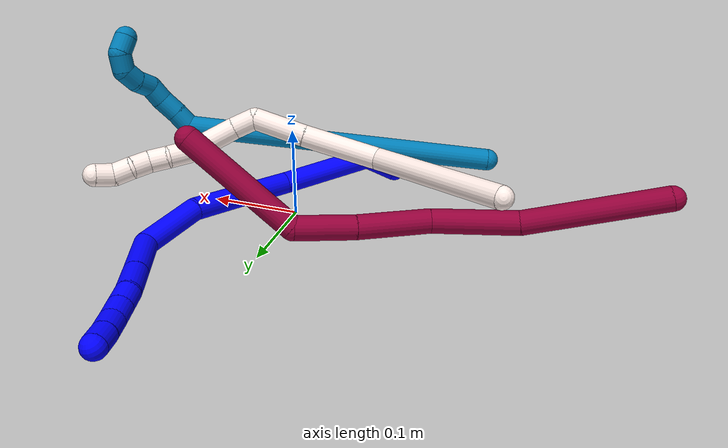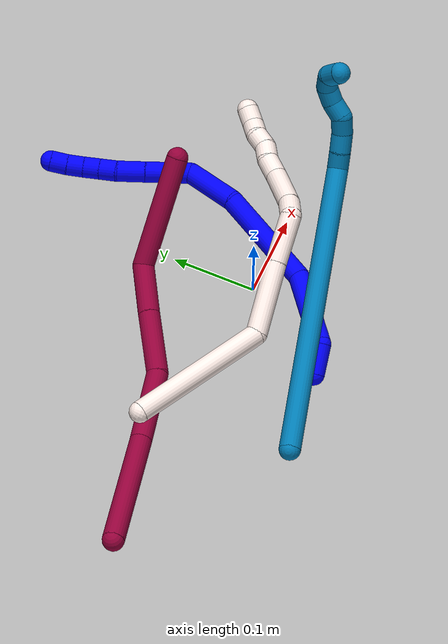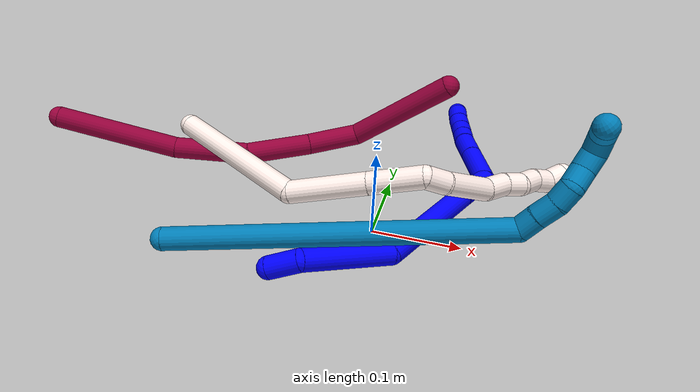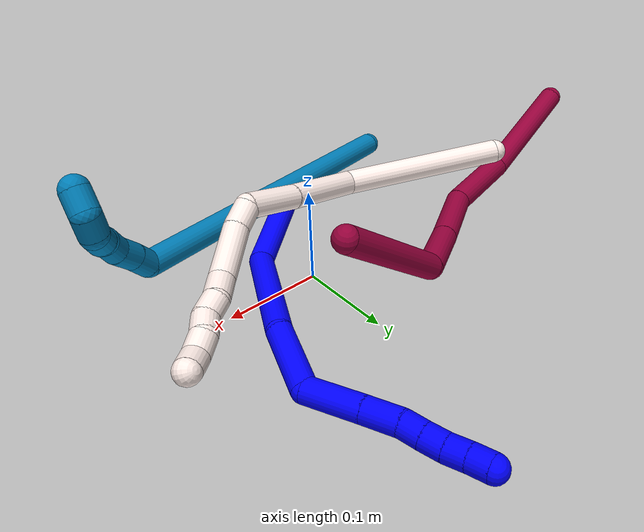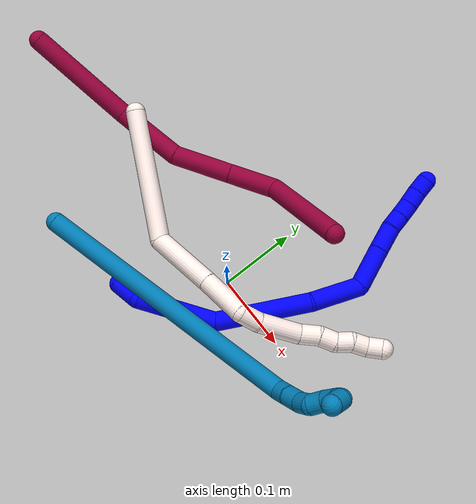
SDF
<sdf version="1.7">
 <world name="default">
  <model name="1">
   <static>0</static>
   <link name="1">
    <collision name="collision-cylinder-e_1_1_4">
     <pose>0.014547 0.001731 0.010417 -0.164652 0.94292 -0.084081</pose>
     <geometry><cylinder><radius>0.0125</radius><length>0.035951</length></cylinder></geometry>
     <surface>
      <friction><ode><mu>1.16</mu><mu2>1.16</mu2><slip1>0</slip1><slip2>0</slip2></ode></friction>
      <contact><ode><kp>1e+06</kp><kd>1</kd><max_vel>0</max_vel><min_depth>0.001</min_depth></ode></contact>
     </surface>
    </collision>
    <visual name="visual-cylinder-e_1_1_4">
     <pose>0.014547 0.001731 0.010417 -0.164652 0.94292 -0.084081</pose>
     <geometry><cylinder><radius>0.0125</radius><length>0.035951</length></cylinder></geometry>
     <material><ambient>0 0 1 1</ambient></material>
    </visual>
    <collision name="collision-cylinder-e_2_4_5">
     <pose>0.067886 0.036745 0.02772 -1.36675 0.851294 -0.707272</pose>
     <geometry><cylinder><radius>0.0125</radius><length>0.103152</length></cylinder></geometry>
     <surface>
      <friction><ode><mu>1.16</mu><mu2>1.16</mu2><slip1>0</slip1><slip2>0</slip2></ode></friction>
      <contact><ode><kp>1e+06</kp><kd>1</kd><max_vel>0</max_vel><min_depth>0.001</min_depth></ode></contact>
     </surface>
    </collision>
    <visual name="visual-cylinder-e_2_4_5">
     <pose>0.067886 0.036745 0.02772 -1.36675 0.851294 -0.707272</pose>
     <geometry><cylinder><radius>0.0125</radius><length>0.103152</length></cylinder></geometry>
     <material><ambient>0 0 1 1</ambient></material>
    </visual>
    <collision name="collision-cylinder-e_3_5_6">
     <pose>0.128807 0.122724 0.059596 -1.128 0.362658 -0.230909</pose>
     <geometry><cylinder><radius>0.0125</radius><length>0.124753</length></cylinder></geometry>
     <surface>
      <friction><ode><mu>1.16</mu><mu2>1.16</mu2><slip1>0</slip1><slip2>0</slip2></ode></friction>
      <contact><ode><kp>1e+06</kp><kd>1</kd><max_vel>0</max_vel><min_depth>0.001</min_depth></ode></contact>
     </surface>
    </collision>
    <visual name="visual-cylinder-e_3_5_6">
     <pose>0.128807 0.122724 0.059596 -1.128 0.362658 -0.230909</pose>
     <geometry><cylinder><radius>0.0125</radius><length>0.124753</length></cylinder></geometry>
     <material><ambient>0 0 1 1</ambient></material>
    </visual>
    <collision name="collision-cylinder-e_4_6_7">
     <pose>0.159487 0.207727 0.089319 -1.42529 0.256139 -0.221647</pose>
     <geometry><cylinder><radius>0.0125</radius><length>0.06751</length></cylinder></geometry>
     <surface>
      <friction><ode><mu>1.16</mu><mu2>1.16</mu2><slip1>0</slip1><slip2>0</slip2></ode></friction>
      <contact><ode><kp>1e+06</kp><kd>1</kd><max_vel>0</max_vel><min_depth>0.001</min_depth></ode></contact>
     </surface>
    </collision>
    <visual name="visual-cylinder-e_4_6_7">
     <pose>0.159487 0.207727 0.089319 -1.42529 0.256139 -0.221647</pose>
     <geometry><cylinder><radius>0.0125</radius><length>0.06751</length></cylinder></geometry>
     <material><ambient>0 0 1 1</ambient></material>
    </visual>
    <collision name="collision-cylinder-e_5_7_8">
     <pose>0.155161 0.263654 0.09901 -1.36393 -0.490201 0.400718</pose>
     <geometry><cylinder><radius>0.0125</radius><length>0.054706</length></cylinder></geometry>
     <surface>
      <friction><ode><mu>1.16</mu><mu2>1.16</mu2><slip1>0</slip1><slip2>0</slip2></ode></friction>
      <contact><ode><kp>1e+06</kp><kd>1</kd><max_vel>0</max_vel><min_depth>0.001</min_depth></ode></contact>
     </surface>
    </collision>
    <visual name="visual-cylinder-e_5_7_8">
     <pose>0.155161 0.263654 0.09901 -1.36393 -0.490201 0.400718</pose>
     <geometry><cylinder><radius>0.0125</radius><length>0.054706</length></cylinder></geometry>
     <material><ambient>0 0 1 1</ambient></material>
    </visual>
    <collision name="collision-cylinder-e_6_8_9">
     <pose>0.134546 0.30192 0.106939 -1.37059 -0.477641 0.392914</pose>
     <geometry><cylinder><radius>0.0125</radius><length>0.033662</length></cylinder></geometry>
     <surface>
      <friction><ode><mu>1.16</mu><mu2>1.16</mu2><slip1>0</slip1><slip2>0</slip2></ode></friction>
      <contact><ode><kp>1e+06</kp><kd>1</kd><max_vel>0</max_vel><min_depth>0.001</min_depth></ode></contact>
     </surface>
    </collision>
    <visual name="visual-cylinder-e_6_8_9">
     <pose>0.134546 0.30192 0.106939 -1.37059 -0.477641 0.392914</pose>
     <geometry><cylinder><radius>0.0125</radius><length>0.033662</length></cylinder></geometry>
     <material><ambient>0 0 1 1</ambient></material>
    </visual>
    <collision name="collision-cylinder-e_7_9_10">
     <pose>0.123809 0.326095 0.111256 -1.43054 -0.302317 0.263122</pose>
     <geometry><cylinder><radius>0.0125</radius><length>0.020156</length></cylinder></geometry>
     <surface>
      <friction><ode><mu>1.16</mu><mu2>1.16</mu2><slip1>0</slip1><slip2>0</slip2></ode></friction>
      <contact><ode><kp>1e+06</kp><kd>1</kd><max_vel>0</max_vel><min_depth>0.001</min_depth></ode></contact>
     </surface>
    </collision>
    <visual name="visual-cylinder-e_7_9_10">
     <pose>0.123809 0.326095 0.111256 -1.43054 -0.302317 0.263122</pose>
     <geometry><cylinder><radius>0.0125</radius><length>0.020156</length></cylinder></geometry>
     <material><ambient>0 0 1 1</ambient></material>
    </visual>
    <collision name="collision-cylinder-e_8_10_11">
     <pose>0.117577 0.344953 0.11421 -1.40011 -0.328832 0.277727</pose>
     <geometry><cylinder><radius>0.0125</radius><length>0.02001</length></cylinder></geometry>
     <surface>
      <friction><ode><mu>1.16</mu><mu2>1.16</mu2><slip1>0</slip1><slip2>0</slip2></ode></friction>
      <contact><ode><kp>1e+06</kp><kd>1</kd><max_vel>0</max_vel><min_depth>0.001</min_depth></ode></contact>
     </surface>
    </collision>
    <visual name="visual-cylinder-e_8_10_11">
     <pose>0.117577 0.344953 0.11421 -1.40011 -0.328832 0.277727</pose>
     <geometry><cylinder><radius>0.0125</radius><length>0.02001</length></cylinder></geometry>
     <material><ambient>0 0 1 1</ambient></material>
    </visual>
    <collision name="collision-cylinder-e_9_11_12">
     <pose>0.110504 0.36319 0.11837 -1.29174 -0.393171 0.29799</pose>
     <geometry><cylinder><radius>0.0125</radius><length>0.020058</length></cylinder></geometry>
     <surface>
      <friction><ode><mu>1.16</mu><mu2>1.16</mu2><slip1>0</slip1><slip2>0</slip2></ode></friction>
      <contact><ode><kp>1e+06</kp><kd>1</kd><max_vel>0</max_vel><min_depth>0.001</min_depth></ode></contact>
     </surface>
    </collision>
    <visual name="visual-cylinder-e_9_11_12">
     <pose>0.110504 0.36319 0.11837 -1.29174 -0.393171 0.29799</pose>
     <geometry><cylinder><radius>0.0125</radius><length>0.020058</length></cylinder></geometry>
     <material><ambient>0 0 1 1</ambient></material>
    </visual>
    <collision name="collision-cylinder-e_10_12_2">
     <pose>0.10354 0.381134 0.123916 -1.25089 -0.316839 0.229727</pose>
     <geometry><cylinder><radius>0.0125</radius><length>0.020042</length></cylinder></geometry>
     <surface>
      <friction><ode><mu>1.16</mu><mu2>1.16</mu2><slip1>0</slip1><slip2>0</slip2></ode></friction>
      <contact><ode><kp>1e+06</kp><kd>1</kd><max_vel>0</max_vel><min_depth>0.001</min_depth></ode></contact>
     </surface>
    </collision>
    <visual name="visual-cylinder-e_10_12_2">
     <pose>0.10354 0.381134 0.123916 -1.25089 -0.316839 0.229727</pose>
     <geometry><cylinder><radius>0.0125</radius><length>0.020042</length></cylinder></geometry>
     <material><ambient>0 0 1 1</ambient></material>
    </visual>
    <collision name="collision-sphere-2">
     <pose>0.100417 0.390173 0.12691 0 -0 0</pose>
     <geometry><sphere><radius>0.0125</radius></sphere></geometry>
     <surface>
      <friction><ode><mu>1.16</mu><mu2>1.16</mu2><slip1>0</slip1><slip2>0</slip2></ode></friction>
      <contact><ode><kp>1e+06</kp><kd>1</kd><max_vel>0</max_vel><min_depth>0.001</min_depth></ode></contact>
     </surface>
    </collision>
    <visual name="visual-sphere-2">
     <pose>0.100417 0.390173 0.12691 0 -0 0</pose>
     <geometry><sphere><radius>0.0125</radius></sphere></geometry>
     <material><ambient>0 0 1 1</ambient></material>
    </visual>
    <collision name="collision-sphere-12">
     <pose>0.106662 0.372095 0.120921 0 -0 0</pose>
     <geometry><sphere><radius>0.0125</radius></sphere></geometry>
     <surface>
      <friction><ode><mu>1.16</mu><mu2>1.16</mu2><slip1>0</slip1><slip2>0</slip2></ode></friction>
      <contact><ode><kp>1e+06</kp><kd>1</kd><max_vel>0</max_vel><min_depth>0.001</min_depth></ode></contact>
     </surface>
    </collision>
    <visual name="visual-sphere-12">
     <pose>0.106662 0.372095 0.120921 0 -0 0</pose>
     <geometry><sphere><radius>0.0125</radius></sphere></geometry>
     <material><ambient>0 0 1 1</ambient></material>
    </visual>
    <collision name="collision-sphere-11">
     <pose>0.114346 0.354285 0.115818 0 -0 0</pose>
     <geometry><sphere><radius>0.0125</radius></sphere></geometry>
     <surface>
      <friction><ode><mu>1.16</mu><mu2>1.16</mu2><slip1>0</slip1><slip2>0</slip2></ode></friction>
      <contact><ode><kp>1e+06</kp><kd>1</kd><max_vel>0</max_vel><min_depth>0.001</min_depth></ode></contact>
     </surface>
    </collision>
    <visual name="visual-sphere-11">
     <pose>0.114346 0.354285 0.115818 0 -0 0</pose>
     <geometry><sphere><radius>0.0125</radius></sphere></geometry>
     <material><ambient>0 0 1 1</ambient></material>
    </visual>
    <collision name="collision-sphere-10">
     <pose>0.120808 0.335622 0.112601 0 -0 0</pose>
     <geometry><sphere><radius>0.0125</radius></sphere></geometry>
     <surface>
      <friction><ode><mu>1.16</mu><mu2>1.16</mu2><slip1>0</slip1><slip2>0</slip2></ode></friction>
      <contact><ode><kp>1e+06</kp><kd>1</kd><max_vel>0</max_vel><min_depth>0.001</min_depth></ode></contact>
     </surface>
    </collision>
    <visual name="visual-sphere-10">
     <pose>0.120808 0.335622 0.112601 0 -0 0</pose>
     <geometry><sphere><radius>0.0125</radius></sphere></geometry>
     <material><ambient>0 0 1 1</ambient></material>
    </visual>
    <collision name="collision-sphere-9">
     <pose>0.126809 0.316569 0.109911 0 -0 0</pose>
     <geometry><sphere><radius>0.0125</radius></sphere></geometry>
     <surface>
      <friction><ode><mu>1.16</mu><mu2>1.16</mu2><slip1>0</slip1><slip2>0</slip2></ode></friction>
      <contact><ode><kp>1e+06</kp><kd>1</kd><max_vel>0</max_vel><min_depth>0.001</min_depth></ode></contact>
     </surface>
    </collision>
    <visual name="visual-sphere-9">
     <pose>0.126809 0.316569 0.109911 0 -0 0</pose>
     <geometry><sphere><radius>0.0125</radius></sphere></geometry>
     <material><ambient>0 0 1 1</ambient></material>
    </visual>
    <collision name="collision-sphere-4">
     <pose>0.029095 0.003462 0.020833 0 -0 0</pose>
     <geometry><sphere><radius>0.0125</radius></sphere></geometry>
     <surface>
      <friction><ode><mu>1.16</mu><mu2>1.16</mu2><slip1>0</slip1><slip2>0</slip2></ode></friction>
      <contact><ode><kp>1e+06</kp><kd>1</kd><max_vel>0</max_vel><min_depth>0.001</min_depth></ode></contact>
     </surface>
    </collision>
    <visual name="visual-sphere-4">
     <pose>0.029095 0.003462 0.020833 0 -0 0</pose>
     <geometry><sphere><radius>0.0125</radius></sphere></geometry>
     <material><ambient>0 0 1 1</ambient></material>
    </visual>
    <collision name="collision-sphere-1">
     <geometry><sphere><radius>0.0125</radius></sphere></geometry>
     <surface>
      <friction><ode><mu>1.16</mu><mu2>1.16</mu2><slip1>0</slip1><slip2>0</slip2></ode></friction>
      <contact><ode><kp>1e+06</kp><kd>1</kd><max_vel>0</max_vel><min_depth>0.001</min_depth></ode></contact>
     </surface>
    </collision>
    <visual name="visual-sphere-1">
     <geometry><sphere><radius>0.0125</radius></sphere></geometry>
     <material><ambient>0 0 1 1</ambient></material>
    </visual>
    <collision name="collision-sphere-8">
     <pose>0.142283 0.287271 0.103966 0 -0 0</pose>
     <geometry><sphere><radius>0.0125</radius></sphere></geometry>
     <surface>
      <friction><ode><mu>1.16</mu><mu2>1.16</mu2><slip1>0</slip1><slip2>0</slip2></ode></friction>
      <contact><ode><kp>1e+06</kp><kd>1</kd><max_vel>0</max_vel><min_depth>0.001</min_depth></ode></contact>
     </surface>
    </collision>
    <visual name="visual-sphere-8">
     <pose>0.142283 0.287271 0.103966 0 -0 0</pose>
     <geometry><sphere><radius>0.0125</radius></sphere></geometry>
     <material><ambient>0 0 1 1</ambient></material>
    </visual>
    <collision name="collision-sphere-5">
     <pose>0.106678 0.070029 0.034608 0 -0 0</pose>
     <geometry><sphere><radius>0.0125</radius></sphere></geometry>
     <surface>
      <friction><ode><mu>1.16</mu><mu2>1.16</mu2><slip1>0</slip1><slip2>0</slip2></ode></friction>
      <contact><ode><kp>1e+06</kp><kd>1</kd><max_vel>0</max_vel><min_depth>0.001</min_depth></ode></contact>
     </surface>
    </collision>
    <visual name="visual-sphere-5">
     <pose>0.106678 0.070029 0.034608 0 -0 0</pose>
     <geometry><sphere><radius>0.0125</radius></sphere></geometry>
     <material><ambient>0 0 1 1</ambient></material>
    </visual>
    <collision name="collision-sphere-6">
     <pose>0.150936 0.175419 0.084584 0 -0 0</pose>
     <geometry><sphere><radius>0.0125</radius></sphere></geometry>
     <surface>
      <friction><ode><mu>1.16</mu><mu2>1.16</mu2><slip1>0</slip1><slip2>0</slip2></ode></friction>
      <contact><ode><kp>1e+06</kp><kd>1</kd><max_vel>0</max_vel><min_depth>0.001</min_depth></ode></contact>
     </surface>
    </collision>
    <visual name="visual-sphere-6">
     <pose>0.150936 0.175419 0.084584 0 -0 0</pose>
     <geometry><sphere><radius>0.0125</radius></sphere></geometry>
     <material><ambient>0 0 1 1</ambient></material>
    </visual>
    <collision name="collision-sphere-7">
     <pose>0.168039 0.240036 0.094053 0 -0 0</pose>
     <geometry><sphere><radius>0.0125</radius></sphere></geometry>
     <surface>
      <friction><ode><mu>1.16</mu><mu2>1.16</mu2><slip1>0</slip1><slip2>0</slip2></ode></friction>
      <contact><ode><kp>1e+06</kp><kd>1</kd><max_vel>0</max_vel><min_depth>0.001</min_depth></ode></contact>
     </surface>
    </collision>
    <visual name="visual-sphere-7">
     <pose>0.168039 0.240036 0.094053 0 -0 0</pose>
     <geometry><sphere><radius>0.0125</radius></sphere></geometry>
     <material><ambient>0 0 1 1</ambient></material>
    </visual>
    <inertial>
     <pose>0.113038 0.172344 0.070201 0 -0 0</pose>
     <mass>0.5</mass>
     <inertia>
      <ixx>0.000185</ixx>
      <ixy>0</ixy>
      <ixz>0</ixz>
      <iyy>0.000118</iyy>
      <iyz>0</iyz>
      <izz>-0.000374</izz>
     </inertia>
    </inertial>
   </link>
   <pose>-0.081952 -0.111154 0.015054 -0.270345 0.175237 -0.089895</pose>
  </model>
  <model name="8">
   <static>0</static>
   <link name="8">
    <collision name="collision-cylinder-e_1_1_4">
     <pose>0.070759 0.011874 -0.006088 -2.04459 1.38441 -1.87127</pose>
     <geometry><cylinder><radius>0.0125</radius><length>0.144012</length></cylinder></geometry>
     <surface>
      <friction><ode><mu>1.16</mu><mu2>1.16</mu2><slip1>0</slip1><slip2>0</slip2></ode></friction>
      <contact><ode><kp>1e+06</kp><kd>1</kd><max_vel>0</max_vel><min_depth>0.001</min_depth></ode></contact>
     </surface>
    </collision>
    <visual name="visual-cylinder-e_1_1_4">
     <pose>0.070759 0.011874 -0.006088 -2.04459 1.38441 -1.87127</pose>
     <geometry><cylinder><radius>0.0125</radius><length>0.144012</length></cylinder></geometry>
     <material><ambient>0.584314 0 0.227451 1</ambient></material>
    </visual>
    <collision name="collision-cylinder-e_2_4_5">
     <pose>0.18478 0.028718 -0.006951 -0.760393 1.40562 -0.65285</pose>
     <geometry><cylinder><radius>0.0125</radius><length>0.087718</length></cylinder></geometry>
     <surface>
      <friction><ode><mu>1.16</mu><mu2>1.16</mu2><slip1>0</slip1><slip2>0</slip2></ode></friction>
      <contact><ode><kp>1e+06</kp><kd>1</kd><max_vel>0</max_vel><min_depth>0.001</min_depth></ode></contact>
     </surface>
    </collision>
    <visual name="visual-cylinder-e_2_4_5">
     <pose>0.18478 0.028718 -0.006951 -0.760393 1.40562 -0.65285</pose>
     <geometry><cylinder><radius>0.0125</radius><length>0.087718</length></cylinder></geometry>
     <material><ambient>0.584314 0 0.227451 1</ambient></material>
    </visual>
    <collision name="collision-cylinder-e_3_5_6">
     <pose>0.261375 0.049334 0.007705 -1.02836 1.06946 -0.645706</pose>
     <geometry><cylinder><radius>0.0125</radius><length>0.076023</length></cylinder></geometry>
     <surface>
      <friction><ode><mu>1.16</mu><mu2>1.16</mu2><slip1>0</slip1><slip2>0</slip2></ode></friction>
      <contact><ode><kp>1e+06</kp><kd>1</kd><max_vel>0</max_vel><min_depth>0.001</min_depth></ode></contact>
     </surface>
    </collision>
    <visual name="visual-cylinder-e_3_5_6">
     <pose>0.261375 0.049334 0.007705 -1.02836 1.06946 -0.645706</pose>
     <geometry><cylinder><radius>0.0125</radius><length>0.076023</length></cylinder></geometry>
     <material><ambient>0.584314 0 0.227451 1</ambient></material>
    </visual>
    <collision name="collision-cylinder-e_4_6_7">
     <pose>0.32152 0.076574 0.026695 -0.881314 1.05995 -0.539134</pose>
     <geometry><cylinder><radius>0.0125</radius><length>0.06147</length></cylinder></geometry>
     <surface>
      <friction><ode><mu>1.16</mu><mu2>1.16</mu2><slip1>0</slip1><slip2>0</slip2></ode></friction>
      <contact><ode><kp>1e+06</kp><kd>1</kd><max_vel>0</max_vel><min_depth>0.001</min_depth></ode></contact>
     </surface>
    </collision>
    <visual name="visual-cylinder-e_4_6_7">
     <pose>0.32152 0.076574 0.026695 -0.881314 1.05995 -0.539134</pose>
     <geometry><cylinder><radius>0.0125</radius><length>0.06147</length></cylinder></geometry>
     <material><ambient>0.584314 0 0.227451 1</ambient></material>
    </visual>
    <collision name="collision-cylinder-e_5_7_2">
     <pose>0.394569 0.074794 0.080513 0.293464 0.785418 0.122288</pose>
     <geometry><cylinder><radius>0.0125</radius><length>0.130777</length></cylinder></geometry>
     <surface>
      <friction><ode><mu>1.16</mu><mu2>1.16</mu2><slip1>0</slip1><slip2>0</slip2></ode></friction>
      <contact><ode><kp>1e+06</kp><kd>1</kd><max_vel>0</max_vel><min_depth>0.001</min_depth></ode></contact>
     </surface>
    </collision>
    <visual name="visual-cylinder-e_5_7_2">
     <pose>0.394569 0.074794 0.080513 0.293464 0.785418 0.122288</pose>
     <geometry><cylinder><radius>0.0125</radius><length>0.130777</length></cylinder></geometry>
     <material><ambient>0.584314 0 0.227451 1</ambient></material>
    </visual>
    <collision name="collision-sphere-2">
     <pose>0.440807 0.061419 0.124772 0 -0 0</pose>
     <geometry><sphere><radius>0.0125</radius></sphere></geometry>
     <surface>
      <friction><ode><mu>1.16</mu><mu2>1.16</mu2><slip1>0</slip1><slip2>0</slip2></ode></friction>
      <contact><ode><kp>1e+06</kp><kd>1</kd><max_vel>0</max_vel><min_depth>0.001</min_depth></ode></contact>
     </surface>
    </collision>
    <visual name="visual-sphere-2">
     <pose>0.440807 0.061419 0.124772 0 -0 0</pose>
     <geometry><sphere><radius>0.0125</radius></sphere></geometry>
     <material><ambient>0.584314 0 0.227451 1</ambient></material>
    </visual>
    <collision name="collision-sphere-7">
     <pose>0.348331 0.088169 0.036254 0 -0 0</pose>
     <geometry><sphere><radius>0.0125</radius></sphere></geometry>
     <surface>
      <friction><ode><mu>1.16</mu><mu2>1.16</mu2><slip1>0</slip1><slip2>0</slip2></ode></friction>
      <contact><ode><kp>1e+06</kp><kd>1</kd><max_vel>0</max_vel><min_depth>0.001</min_depth></ode></contact>
     </surface>
    </collision>
    <visual name="visual-sphere-7">
     <pose>0.348331 0.088169 0.036254 0 -0 0</pose>
     <geometry><sphere><radius>0.0125</radius></sphere></geometry>
     <material><ambient>0.584314 0 0.227451 1</ambient></material>
    </visual>
    <collision name="collision-sphere-6">
     <pose>0.294709 0.06498 0.017136 0 -0 0</pose>
     <geometry><sphere><radius>0.0125</radius></sphere></geometry>
     <surface>
      <friction><ode><mu>1.16</mu><mu2>1.16</mu2><slip1>0</slip1><slip2>0</slip2></ode></friction>
      <contact><ode><kp>1e+06</kp><kd>1</kd><max_vel>0</max_vel><min_depth>0.001</min_depth></ode></contact>
     </surface>
    </collision>
    <visual name="visual-sphere-6">
     <pose>0.294709 0.06498 0.017136 0 -0 0</pose>
     <geometry><sphere><radius>0.0125</radius></sphere></geometry>
     <material><ambient>0.584314 0 0.227451 1</ambient></material>
    </visual>
    <collision name="collision-sphere-5">
     <pose>0.228041 0.033688 -0.001725 0 -0 0</pose>
     <geometry><sphere><radius>0.0125</radius></sphere></geometry>
     <surface>
      <friction><ode><mu>1.16</mu><mu2>1.16</mu2><slip1>0</slip1><slip2>0</slip2></ode></friction>
      <contact><ode><kp>1e+06</kp><kd>1</kd><max_vel>0</max_vel><min_depth>0.001</min_depth></ode></contact>
     </surface>
    </collision>
    <visual name="visual-sphere-5">
     <pose>0.228041 0.033688 -0.001725 0 -0 0</pose>
     <geometry><sphere><radius>0.0125</radius></sphere></geometry>
     <material><ambient>0.584314 0 0.227451 1</ambient></material>
    </visual>
    <collision name="collision-sphere-1">
     <geometry><sphere><radius>0.0125</radius></sphere></geometry>
     <surface>
      <friction><ode><mu>1.16</mu><mu2>1.16</mu2><slip1>0</slip1><slip2>0</slip2></ode></friction>
      <contact><ode><kp>1e+06</kp><kd>1</kd><max_vel>0</max_vel><min_depth>0.001</min_depth></ode></contact>
     </surface>
    </collision>
    <visual name="visual-sphere-1">
     <geometry><sphere><radius>0.0125</radius></sphere></geometry>
     <material><ambient>0.584314 0 0.227451 1</ambient></material>
    </visual>
    <collision name="collision-sphere-4">
     <pose>0.141518 0.023747 -0.012176 0 -0 0</pose>
     <geometry><sphere><radius>0.0125</radius></sphere></geometry>
     <surface>
      <friction><ode><mu>1.16</mu><mu2>1.16</mu2><slip1>0</slip1><slip2>0</slip2></ode></friction>
      <contact><ode><kp>1e+06</kp><kd>1</kd><max_vel>0</max_vel><min_depth>0.001</min_depth></ode></contact>
     </surface>
    </collision>
    <visual name="visual-sphere-4">
     <pose>0.141518 0.023747 -0.012176 0 -0 0</pose>
     <geometry><sphere><radius>0.0125</radius></sphere></geometry>
     <material><ambient>0.584314 0 0.227451 1</ambient></material>
    </visual>
    <inertial>
     <pose>0.235267 0.044936 0.022539 0 -0 0</pose>
     <mass>0.5</mass>
     <inertia>
      <ixx>0.000136</ixx>
      <ixy>0</ixy>
      <ixz>0</ixz>
      <iyy>0.0005</iyy>
      <iyz>0</iyz>
      <izz>-0.000522</izz>
     </inertia>
    </inertial>
   </link>
   <pose>-0.388505 -0.004439 0.082483 -0.2336 0.126222 0.078413</pose>
  </model>
  <model name="9">
   <static>0</static>
   <link name="9">
    <collision name="collision-cylinder-e_1_1_4">
     <pose>0.14513 0.03217 -0.097425 -2.82266 0.955425 -2.53918</pose>
     <geometry><cylinder><radius>0.0125</radius><length>0.355467</length></cylinder></geometry>
     <surface>
      <friction><ode><mu>1.16</mu><mu2>1.16</mu2><slip1>0</slip1><slip2>0</slip2></ode></friction>
      <contact><ode><kp>1e+06</kp><kd>1</kd><max_vel>0</max_vel><min_depth>0.001</min_depth></ode></contact>
     </surface>
    </collision>
    <visual name="visual-cylinder-e_1_1_4">
     <pose>0.14513 0.03217 -0.097425 -2.82266 0.955425 -2.53918</pose>
     <geometry><cylinder><radius>0.0125</radius><length>0.355467</length></cylinder></geometry>
     <material><ambient>0 0.490196 0.709804 1</ambient></material>
    </visual>
    <collision name="collision-cylinder-e_2_4_5">
     <pose>0.300763 0.06599 -0.192666 -0.646911 1.31585 -0.506972</pose>
     <geometry><cylinder><radius>0.0125</radius><length>0.021707</length></cylinder></geometry>
     <surface>
      <friction><ode><mu>1.16</mu><mu2>1.16</mu2><slip1>0</slip1><slip2>0</slip2></ode></friction>
      <contact><ode><kp>1e+06</kp><kd>1</kd><max_vel>0</max_vel><min_depth>0.001</min_depth></ode></contact>
     </surface>
    </collision>
    <visual name="visual-cylinder-e_2_4_5">
     <pose>0.300763 0.06599 -0.192666 -0.646911 1.31585 -0.506972</pose>
     <geometry><cylinder><radius>0.0125</radius><length>0.021707</length></cylinder></geometry>
     <material><ambient>0 0.490196 0.709804 1</ambient></material>
    </visual>
    <collision name="collision-cylinder-e_3_5_6">
     <pose>0.322241 0.069684 -0.189076 -0.968375 1.34849 -0.795813</pose>
     <geometry><cylinder><radius>0.0125</radius><length>0.022504</length></cylinder></geometry>
     <surface>
      <friction><ode><mu>1.16</mu><mu2>1.16</mu2><slip1>0</slip1><slip2>0</slip2></ode></friction>
      <contact><ode><kp>1e+06</kp><kd>1</kd><max_vel>0</max_vel><min_depth>0.001</min_depth></ode></contact>
     </surface>
    </collision>
    <visual name="visual-cylinder-e_3_5_6">
     <pose>0.322241 0.069684 -0.189076 -0.968375 1.34849 -0.795813</pose>
     <geometry><cylinder><radius>0.0125</radius><length>0.022504</length></cylinder></geometry>
     <material><ambient>0 0.490196 0.709804 1</ambient></material>
    </visual>
    <collision name="collision-cylinder-e_4_6_7">
     <pose>0.342297 0.07459 -0.184203 -0.690082 1.11107 -0.439027</pose>
     <geometry><cylinder><radius>0.0125</radius><length>0.020264</length></cylinder></geometry>
     <surface>
      <friction><ode><mu>1.16</mu><mu2>1.16</mu2><slip1>0</slip1><slip2>0</slip2></ode></friction>
      <contact><ode><kp>1e+06</kp><kd>1</kd><max_vel>0</max_vel><min_depth>0.001</min_depth></ode></contact>
     </surface>
    </collision>
    <visual name="visual-cylinder-e_4_6_7">
     <pose>0.342297 0.07459 -0.184203 -0.690082 1.11107 -0.439027</pose>
     <geometry><cylinder><radius>0.0125</radius><length>0.020264</length></cylinder></geometry>
     <material><ambient>0 0.490196 0.709804 1</ambient></material>
    </visual>
    <collision name="collision-cylinder-e_5_7_8">
     <pose>0.357798 0.085031 -0.17944 -1.40151 0.69577 -0.593739</pose>
     <geometry><cylinder><radius>0.0125</radius><length>0.020035</length></cylinder></geometry>
     <surface>
      <friction><ode><mu>1.16</mu><mu2>1.16</mu2><slip1>0</slip1><slip2>0</slip2></ode></friction>
      <contact><ode><kp>1e+06</kp><kd>1</kd><max_vel>0</max_vel><min_depth>0.001</min_depth></ode></contact>
     </surface>
    </collision>
    <visual name="visual-cylinder-e_5_7_8">
     <pose>0.357798 0.085031 -0.17944 -1.40151 0.69577 -0.593739</pose>
     <geometry><cylinder><radius>0.0125</radius><length>0.020035</length></cylinder></geometry>
     <material><ambient>0 0.490196 0.709804 1</ambient></material>
    </visual>
    <collision name="collision-cylinder-e_6_8_9">
     <pose>0.371957 0.098103 -0.174958 -1.04504 0.883584 -0.531878</pose>
     <geometry><cylinder><radius>0.0125</radius><length>0.020021</length></cylinder></geometry>
     <surface>
      <friction><ode><mu>1.16</mu><mu2>1.16</mu2><slip1>0</slip1><slip2>0</slip2></ode></friction>
      <contact><ode><kp>1e+06</kp><kd>1</kd><max_vel>0</max_vel><min_depth>0.001</min_depth></ode></contact>
     </surface>
    </collision>
    <visual name="visual-cylinder-e_6_8_9">
     <pose>0.371957 0.098103 -0.174958 -1.04504 0.883584 -0.531878</pose>
     <geometry><cylinder><radius>0.0125</radius><length>0.020021</length></cylinder></geometry>
     <material><ambient>0 0.490196 0.709804 1</ambient></material>
    </visual>
    <collision name="collision-cylinder-e_7_9_10">
     <pose>0.38684 0.103885 -0.16478 -0.041306 0.79583 -0.017364</pose>
     <geometry><cylinder><radius>0.0125</radius><length>0.02</length></cylinder></geometry>
     <surface>
      <friction><ode><mu>1.16</mu><mu2>1.16</mu2><slip1>0</slip1><slip2>0</slip2></ode></friction>
      <contact><ode><kp>1e+06</kp><kd>1</kd><max_vel>0</max_vel><min_depth>0.001</min_depth></ode></contact>
     </surface>
    </collision>
    <visual name="visual-cylinder-e_7_9_10">
     <pose>0.38684 0.103885 -0.16478 -0.041306 0.79583 -0.017364</pose>
     <geometry><cylinder><radius>0.0125</radius><length>0.02</length></cylinder></geometry>
     <material><ambient>0 0.490196 0.709804 1</ambient></material>
    </visual>
    <collision name="collision-cylinder-e_8_10_2">
     <pose>0.398051 0.097908 -0.15114 0.755726 0.418752 0.168292</pose>
     <geometry><cylinder><radius>0.0125</radius><length>0.02</length></cylinder></geometry>
     <surface>
      <friction><ode><mu>1.16</mu><mu2>1.16</mu2><slip1>0</slip1><slip2>0</slip2></ode></friction>
      <contact><ode><kp>1e+06</kp><kd>1</kd><max_vel>0</max_vel><min_depth>0.001</min_depth></ode></contact>
     </surface>
    </collision>
    <visual name="visual-cylinder-e_8_10_2">
     <pose>0.398051 0.097908 -0.15114 0.755726 0.418752 0.168292</pose>
     <geometry><cylinder><radius>0.0125</radius><length>0.02</length></cylinder></geometry>
     <material><ambient>0 0.490196 0.709804 1</ambient></material>
    </visual>
    <collision name="collision-sphere-2">
     <pose>0.402117 0.091643 -0.144491 0 -0 0</pose>
     <geometry><sphere><radius>0.0125</radius></sphere></geometry>
     <surface>
      <friction><ode><mu>1.16</mu><mu2>1.16</mu2><slip1>0</slip1><slip2>0</slip2></ode></friction>
      <contact><ode><kp>1e+06</kp><kd>1</kd><max_vel>0</max_vel><min_depth>0.001</min_depth></ode></contact>
     </surface>
    </collision>
    <visual name="visual-sphere-2">
     <pose>0.402117 0.091643 -0.144491 0 -0 0</pose>
     <geometry><sphere><radius>0.0125</radius></sphere></geometry>
     <material><ambient>0 0.490196 0.709804 1</ambient></material>
    </visual>
    <collision name="collision-sphere-10">
     <pose>0.393985 0.104174 -0.157789 0 -0 0</pose>
     <geometry><sphere><radius>0.0125</radius></sphere></geometry>
     <surface>
      <friction><ode><mu>1.16</mu><mu2>1.16</mu2><slip1>0</slip1><slip2>0</slip2></ode></friction>
      <contact><ode><kp>1e+06</kp><kd>1</kd><max_vel>0</max_vel><min_depth>0.001</min_depth></ode></contact>
     </surface>
    </collision>
    <visual name="visual-sphere-10">
     <pose>0.393985 0.104174 -0.157789 0 -0 0</pose>
     <geometry><sphere><radius>0.0125</radius></sphere></geometry>
     <material><ambient>0 0.490196 0.709804 1</ambient></material>
    </visual>
    <collision name="collision-sphere-9">
     <pose>0.379696 0.103596 -0.171771 0 -0 0</pose>
     <geometry><sphere><radius>0.0125</radius></sphere></geometry>
     <surface>
      <friction><ode><mu>1.16</mu><mu2>1.16</mu2><slip1>0</slip1><slip2>0</slip2></ode></friction>
      <contact><ode><kp>1e+06</kp><kd>1</kd><max_vel>0</max_vel><min_depth>0.001</min_depth></ode></contact>
     </surface>
    </collision>
    <visual name="visual-sphere-9">
     <pose>0.379696 0.103596 -0.171771 0 -0 0</pose>
     <geometry><sphere><radius>0.0125</radius></sphere></geometry>
     <material><ambient>0 0.490196 0.709804 1</ambient></material>
    </visual>
    <collision name="collision-sphere-4">
     <pose>0.29026 0.06434 -0.19485 0 -0 0</pose>
     <geometry><sphere><radius>0.0125</radius></sphere></geometry>
     <surface>
      <friction><ode><mu>1.16</mu><mu2>1.16</mu2><slip1>0</slip1><slip2>0</slip2></ode></friction>
      <contact><ode><kp>1e+06</kp><kd>1</kd><max_vel>0</max_vel><min_depth>0.001</min_depth></ode></contact>
     </surface>
    </collision>
    <visual name="visual-sphere-4">
     <pose>0.29026 0.06434 -0.19485 0 -0 0</pose>
     <geometry><sphere><radius>0.0125</radius></sphere></geometry>
     <material><ambient>0 0.490196 0.709804 1</ambient></material>
    </visual>
    <collision name="collision-sphere-1">
     <geometry><sphere><radius>0.0125</radius></sphere></geometry>
     <surface>
      <friction><ode><mu>1.16</mu><mu2>1.16</mu2><slip1>0</slip1><slip2>0</slip2></ode></friction>
      <contact><ode><kp>1e+06</kp><kd>1</kd><max_vel>0</max_vel><min_depth>0.001</min_depth></ode></contact>
     </surface>
    </collision>
    <visual name="visual-sphere-1">
     <geometry><sphere><radius>0.0125</radius></sphere></geometry>
     <material><ambient>0 0.490196 0.709804 1</ambient></material>
    </visual>
    <collision name="collision-sphere-8">
     <pose>0.364219 0.09261 -0.178145 0 -0 0</pose>
     <geometry><sphere><radius>0.0125</radius></sphere></geometry>
     <surface>
      <friction><ode><mu>1.16</mu><mu2>1.16</mu2><slip1>0</slip1><slip2>0</slip2></ode></friction>
      <contact><ode><kp>1e+06</kp><kd>1</kd><max_vel>0</max_vel><min_depth>0.001</min_depth></ode></contact>
     </surface>
    </collision>
    <visual name="visual-sphere-8">
     <pose>0.364219 0.09261 -0.178145 0 -0 0</pose>
     <geometry><sphere><radius>0.0125</radius></sphere></geometry>
     <material><ambient>0 0.490196 0.709804 1</ambient></material>
    </visual>
    <collision name="collision-sphere-5">
     <pose>0.311266 0.06764 -0.190481 0 -0 0</pose>
     <geometry><sphere><radius>0.0125</radius></sphere></geometry>
     <surface>
      <friction><ode><mu>1.16</mu><mu2>1.16</mu2><slip1>0</slip1><slip2>0</slip2></ode></friction>
      <contact><ode><kp>1e+06</kp><kd>1</kd><max_vel>0</max_vel><min_depth>0.001</min_depth></ode></contact>
     </surface>
    </collision>
    <visual name="visual-sphere-5">
     <pose>0.311266 0.06764 -0.190481 0 -0 0</pose>
     <geometry><sphere><radius>0.0125</radius></sphere></geometry>
     <material><ambient>0 0.490196 0.709804 1</ambient></material>
    </visual>
    <collision name="collision-sphere-6">
     <pose>0.333216 0.071728 -0.18767 0 -0 0</pose>
     <geometry><sphere><radius>0.0125</radius></sphere></geometry>
     <surface>
      <friction><ode><mu>1.16</mu><mu2>1.16</mu2><slip1>0</slip1><slip2>0</slip2></ode></friction>
      <contact><ode><kp>1e+06</kp><kd>1</kd><max_vel>0</max_vel><min_depth>0.001</min_depth></ode></contact>
     </surface>
    </collision>
    <visual name="visual-sphere-6">
     <pose>0.333216 0.071728 -0.18767 0 -0 0</pose>
     <geometry><sphere><radius>0.0125</radius></sphere></geometry>
     <material><ambient>0 0.490196 0.709804 1</ambient></material>
    </visual>
    <collision name="collision-sphere-7">
     <pose>0.351377 0.077452 -0.180736 0 -0 0</pose>
     <geometry><sphere><radius>0.0125</radius></sphere></geometry>
     <surface>
      <friction><ode><mu>1.16</mu><mu2>1.16</mu2><slip1>0</slip1><slip2>0</slip2></ode></friction>
      <contact><ode><kp>1e+06</kp><kd>1</kd><max_vel>0</max_vel><min_depth>0.001</min_depth></ode></contact>
     </surface>
    </collision>
    <visual name="visual-sphere-7">
     <pose>0.351377 0.077452 -0.180736 0 -0 0</pose>
     <geometry><sphere><radius>0.0125</radius></sphere></geometry>
     <material><ambient>0 0.490196 0.709804 1</ambient></material>
    </visual>
    <inertial>
     <pose>0.205239 0.047302 -0.120436 0 -0 0</pose>
     <mass>0.5</mass>
     <inertia>
      <ixx>-0.002981</ixx>
      <ixy>0</ixy>
      <ixz>0</ixz>
      <iyy>0.00227</iyy>
      <iyz>0</iyz>
      <izz>-0.003769</izz>
     </inertia>
    </inertial>
   </link>
   <pose>-0.190909 -0.127706 0.037859 0.076802 -0.668066 0.023258</pose>
  </model>
  <model name="11">
   <static>0</static>
   <link name="11">
    <collision name="collision-cylinder-e_1_1_4">
     <pose>0.064138 0.000991 -0.054583 -3.12344 0.865627 -3.1023</pose>
     <geometry><cylinder><radius>0.0125</radius><length>0.16845</length></cylinder></geometry>
     <surface>
      <friction><ode><mu>1.16</mu><mu2>1.16</mu2><slip1>0</slip1><slip2>0</slip2></ode></friction>
      <contact><ode><kp>1e+06</kp><kd>1</kd><max_vel>0</max_vel><min_depth>0.001</min_depth></ode></contact>
     </surface>
    </collision>
    <visual name="visual-cylinder-e_1_1_4">
     <pose>0.064138 0.000991 -0.054583 -3.12344 0.865627 -3.1023</pose>
     <geometry><cylinder><radius>0.0125</radius><length>0.16845</length></cylinder></geometry>
     <material><ambient>1 0.933333 0.909804 1</ambient></material>
    </visual>
    <collision name="collision-cylinder-e_2_4_5">
     <pose>0.171 0.005897 -0.10979 -1.72905 1.47829 -1.63703</pose>
     <geometry><cylinder><radius>0.0125</radius><length>0.085817</length></cylinder></geometry>
     <surface>
      <friction><ode><mu>1.16</mu><mu2>1.16</mu2><slip1>0</slip1><slip2>0</slip2></ode></friction>
      <contact><ode><kp>1e+06</kp><kd>1</kd><max_vel>0</max_vel><min_depth>0.001</min_depth></ode></contact>
     </surface>
    </collision>
    <visual name="visual-cylinder-e_2_4_5">
     <pose>0.171 0.005897 -0.10979 -1.72905 1.47829 -1.63703</pose>
     <geometry><cylinder><radius>0.0125</radius><length>0.085817</length></cylinder></geometry>
     <material><ambient>1 0.933333 0.909804 1</ambient></material>
    </visual>
    <collision name="collision-cylinder-e_3_5_6">
     <pose>0.243139 0.0114 -0.111402 -2.12703 1.50727 -2.07215</pose>
     <geometry><cylinder><radius>0.0125</radius><length>0.058947</length></cylinder></geometry>
     <surface>
      <friction><ode><mu>1.16</mu><mu2>1.16</mu2><slip1>0</slip1><slip2>0</slip2></ode></friction>
      <contact><ode><kp>1e+06</kp><kd>1</kd><max_vel>0</max_vel><min_depth>0.001</min_depth></ode></contact>
     </surface>
    </collision>
    <visual name="visual-cylinder-e_3_5_6">
     <pose>0.243139 0.0114 -0.111402 -2.12703 1.50727 -2.07215</pose>
     <geometry><cylinder><radius>0.0125</radius><length>0.058947</length></cylinder></geometry>
     <material><ambient>1 0.933333 0.909804 1</ambient></material>
    </visual>
    <collision name="collision-cylinder-e_4_6_7">
     <pose>0.281309 0.022312 -0.113247 -1.66243 0.75195 -0.816734</pose>
     <geometry><cylinder><radius>0.0125</radius><length>0.025638</length></cylinder></geometry>
     <surface>
      <friction><ode><mu>1.16</mu><mu2>1.16</mu2><slip1>0</slip1><slip2>0</slip2></ode></friction>
      <contact><ode><kp>1e+06</kp><kd>1</kd><max_vel>0</max_vel><min_depth>0.001</min_depth></ode></contact>
     </surface>
    </collision>
    <visual name="visual-cylinder-e_4_6_7">
     <pose>0.281309 0.022312 -0.113247 -1.66243 0.75195 -0.816734</pose>
     <geometry><cylinder><radius>0.0125</radius><length>0.025638</length></cylinder></geometry>
     <material><ambient>1 0.933333 0.909804 1</ambient></material>
    </visual>
    <collision name="collision-cylinder-e_5_7_8">
     <pose>0.306718 0.053061 -0.111198 -1.43598 0.656288 -0.578125</pose>
     <geometry><cylinder><radius>0.0125</radius><length>0.054582</length></cylinder></geometry>
     <surface>
      <friction><ode><mu>1.16</mu><mu2>1.16</mu2><slip1>0</slip1><slip2>0</slip2></ode></friction>
      <contact><ode><kp>1e+06</kp><kd>1</kd><max_vel>0</max_vel><min_depth>0.001</min_depth></ode></contact>
     </surface>
    </collision>
    <visual name="visual-cylinder-e_5_7_8">
     <pose>0.306718 0.053061 -0.111198 -1.43598 0.656288 -0.578125</pose>
     <geometry><cylinder><radius>0.0125</radius><length>0.054582</length></cylinder></geometry>
     <material><ambient>1 0.933333 0.909804 1</ambient></material>
    </visual>
    <collision name="collision-cylinder-e_6_8_9">
     <pose>0.332171 0.08211 -0.103334 -0.994246 0.769012 -0.432243</pose>
     <geometry><cylinder><radius>0.0125</radius><length>0.02531</length></cylinder></geometry>
     <surface>
      <friction><ode><mu>1.16</mu><mu2>1.16</mu2><slip1>0</slip1><slip2>0</slip2></ode></friction>
      <contact><ode><kp>1e+06</kp><kd>1</kd><max_vel>0</max_vel><min_depth>0.001</min_depth></ode></contact>
     </surface>
    </collision>
    <visual name="visual-cylinder-e_6_8_9">
     <pose>0.332171 0.08211 -0.103334 -0.994246 0.769012 -0.432243</pose>
     <geometry><cylinder><radius>0.0125</radius><length>0.02531</length></cylinder></geometry>
     <material><ambient>1 0.933333 0.909804 1</ambient></material>
    </visual>
    <collision name="collision-cylinder-e_7_9_10">
     <pose>0.349264 0.095996 -0.097216 -1.38741 0.915855 -0.777958</pose>
     <geometry><cylinder><radius>0.0125</radius><length>0.020914</length></cylinder></geometry>
     <surface>
      <friction><ode><mu>1.16</mu><mu2>1.16</mu2><slip1>0</slip1><slip2>0</slip2></ode></friction>
      <contact><ode><kp>1e+06</kp><kd>1</kd><max_vel>0</max_vel><min_depth>0.001</min_depth></ode></contact>
     </surface>
    </collision>
    <visual name="visual-cylinder-e_7_9_10">
     <pose>0.349264 0.095996 -0.097216 -1.38741 0.915855 -0.777958</pose>
     <geometry><cylinder><radius>0.0125</radius><length>0.020914</length></cylinder></geometry>
     <material><ambient>1 0.933333 0.909804 1</ambient></material>
    </visual>
    <collision name="collision-cylinder-e_8_10_11">
     <pose>0.363618 0.108929 -0.091494 -0.971188 0.643573 -0.348306</pose>
     <geometry><cylinder><radius>0.0125</radius><length>0.0202</length></cylinder></geometry>
     <surface>
      <friction><ode><mu>1.16</mu><mu2>1.16</mu2><slip1>0</slip1><slip2>0</slip2></ode></friction>
      <contact><ode><kp>1e+06</kp><kd>1</kd><max_vel>0</max_vel><min_depth>0.001</min_depth></ode></contact>
     </surface>
    </collision>
    <visual name="visual-cylinder-e_8_10_11">
     <pose>0.363618 0.108929 -0.091494 -0.971188 0.643573 -0.348306</pose>
     <geometry><cylinder><radius>0.0125</radius><length>0.0202</length></cylinder></geometry>
     <material><ambient>1 0.933333 0.909804 1</ambient></material>
    </visual>
    <collision name="collision-cylinder-e_9_11_12">
     <pose>0.376606 0.12273 -0.085722 -1.40229 0.763837 -0.653831</pose>
     <geometry><cylinder><radius>0.0125</radius><length>0.02003</length></cylinder></geometry>
     <surface>
      <friction><ode><mu>1.16</mu><mu2>1.16</mu2><slip1>0</slip1><slip2>0</slip2></ode></friction>
      <contact><ode><kp>1e+06</kp><kd>1</kd><max_vel>0</max_vel><min_depth>0.001</min_depth></ode></contact>
     </surface>
    </collision>
    <visual name="visual-cylinder-e_9_11_12">
     <pose>0.376606 0.12273 -0.085722 -1.40229 0.763837 -0.653831</pose>
     <geometry><cylinder><radius>0.0125</radius><length>0.02003</length></cylinder></geometry>
     <material><ambient>1 0.933333 0.909804 1</ambient></material>
    </visual>
    <collision name="collision-cylinder-e_10_12_2">
     <pose>0.391661 0.133788 -0.080076 -0.72496 0.941024 -0.381087</pose>
     <geometry><cylinder><radius>0.0125</radius><length>0.020112</length></cylinder></geometry>
     <surface>
      <friction><ode><mu>1.16</mu><mu2>1.16</mu2><slip1>0</slip1><slip2>0</slip2></ode></friction>
      <contact><ode><kp>1e+06</kp><kd>1</kd><max_vel>0</max_vel><min_depth>0.001</min_depth></ode></contact>
     </surface>
    </collision>
    <visual name="visual-cylinder-e_10_12_2">
     <pose>0.391661 0.133788 -0.080076 -0.72496 0.941024 -0.381087</pose>
     <geometry><cylinder><radius>0.0125</radius><length>0.020112</length></cylinder></geometry>
     <material><ambient>1 0.933333 0.909804 1</ambient></material>
    </visual>
    <collision name="collision-sphere-2">
     <pose>0.399788 0.137715 -0.075642 0 -0 0</pose>
     <geometry><sphere><radius>0.0125</radius></sphere></geometry>
     <surface>
      <friction><ode><mu>1.16</mu><mu2>1.16</mu2><slip1>0</slip1><slip2>0</slip2></ode></friction>
      <contact><ode><kp>1e+06</kp><kd>1</kd><max_vel>0</max_vel><min_depth>0.001</min_depth></ode></contact>
     </surface>
    </collision>
    <visual name="visual-sphere-2">
     <pose>0.399788 0.137715 -0.075642 0 -0 0</pose>
     <geometry><sphere><radius>0.0125</radius></sphere></geometry>
     <material><ambient>1 0.933333 0.909804 1</ambient></material>
    </visual>
    <collision name="collision-sphere-12">
     <pose>0.383534 0.12986 -0.084509 0 -0 0</pose>
     <geometry><sphere><radius>0.0125</radius></sphere></geometry>
     <surface>
      <friction><ode><mu>1.16</mu><mu2>1.16</mu2><slip1>0</slip1><slip2>0</slip2></ode></friction>
      <contact><ode><kp>1e+06</kp><kd>1</kd><max_vel>0</max_vel><min_depth>0.001</min_depth></ode></contact>
     </surface>
    </collision>
    <visual name="visual-sphere-12">
     <pose>0.383534 0.12986 -0.084509 0 -0 0</pose>
     <geometry><sphere><radius>0.0125</radius></sphere></geometry>
     <material><ambient>1 0.933333 0.909804 1</ambient></material>
    </visual>
    <collision name="collision-sphere-11">
     <pose>0.369679 0.1156 -0.086935 0 -0 0</pose>
     <geometry><sphere><radius>0.0125</radius></sphere></geometry>
     <surface>
      <friction><ode><mu>1.16</mu><mu2>1.16</mu2><slip1>0</slip1><slip2>0</slip2></ode></friction>
      <contact><ode><kp>1e+06</kp><kd>1</kd><max_vel>0</max_vel><min_depth>0.001</min_depth></ode></contact>
     </surface>
    </collision>
    <visual name="visual-sphere-11">
     <pose>0.369679 0.1156 -0.086935 0 -0 0</pose>
     <geometry><sphere><radius>0.0125</radius></sphere></geometry>
     <material><ambient>1 0.933333 0.909804 1</ambient></material>
    </visual>
    <collision name="collision-sphere-10">
     <pose>0.357558 0.102259 -0.096054 0 -0 0</pose>
     <geometry><sphere><radius>0.0125</radius></sphere></geometry>
     <surface>
      <friction><ode><mu>1.16</mu><mu2>1.16</mu2><slip1>0</slip1><slip2>0</slip2></ode></friction>
      <contact><ode><kp>1e+06</kp><kd>1</kd><max_vel>0</max_vel><min_depth>0.001</min_depth></ode></contact>
     </surface>
    </collision>
    <visual name="visual-sphere-10">
     <pose>0.357558 0.102259 -0.096054 0 -0 0</pose>
     <geometry><sphere><radius>0.0125</radius></sphere></geometry>
     <material><ambient>1 0.933333 0.909804 1</ambient></material>
    </visual>
    <collision name="collision-sphere-9">
     <pose>0.340971 0.089734 -0.098377 0 -0 0</pose>
     <geometry><sphere><radius>0.0125</radius></sphere></geometry>
     <surface>
      <friction><ode><mu>1.16</mu><mu2>1.16</mu2><slip1>0</slip1><slip2>0</slip2></ode></friction>
      <contact><ode><kp>1e+06</kp><kd>1</kd><max_vel>0</max_vel><min_depth>0.001</min_depth></ode></contact>
     </surface>
    </collision>
    <visual name="visual-sphere-9">
     <pose>0.340971 0.089734 -0.098377 0 -0 0</pose>
     <geometry><sphere><radius>0.0125</radius></sphere></geometry>
     <material><ambient>1 0.933333 0.909804 1</ambient></material>
    </visual>
    <collision name="collision-sphere-4">
     <pose>0.128275 0.001982 -0.109165 0 -0 0</pose>
     <geometry><sphere><radius>0.0125</radius></sphere></geometry>
     <surface>
      <friction><ode><mu>1.16</mu><mu2>1.16</mu2><slip1>0</slip1><slip2>0</slip2></ode></friction>
      <contact><ode><kp>1e+06</kp><kd>1</kd><max_vel>0</max_vel><min_depth>0.001</min_depth></ode></contact>
     </surface>
    </collision>
    <visual name="visual-sphere-4">
     <pose>0.128275 0.001982 -0.109165 0 -0 0</pose>
     <geometry><sphere><radius>0.0125</radius></sphere></geometry>
     <material><ambient>1 0.933333 0.909804 1</ambient></material>
    </visual>
    <collision name="collision-sphere-1">
     <geometry><sphere><radius>0.0125</radius></sphere></geometry>
     <surface>
      <friction><ode><mu>1.16</mu><mu2>1.16</mu2><slip1>0</slip1><slip2>0</slip2></ode></friction>
      <contact><ode><kp>1e+06</kp><kd>1</kd><max_vel>0</max_vel><min_depth>0.001</min_depth></ode></contact>
     </surface>
    </collision>
    <visual name="visual-sphere-1">
     <geometry><sphere><radius>0.0125</radius></sphere></geometry>
     <material><ambient>1 0.933333 0.909804 1</ambient></material>
    </visual>
    <collision name="collision-sphere-8">
     <pose>0.32337 0.074486 -0.108292 0 -0 0</pose>
     <geometry><sphere><radius>0.0125</radius></sphere></geometry>
     <surface>
      <friction><ode><mu>1.16</mu><mu2>1.16</mu2><slip1>0</slip1><slip2>0</slip2></ode></friction>
      <contact><ode><kp>1e+06</kp><kd>1</kd><max_vel>0</max_vel><min_depth>0.001</min_depth></ode></contact>
     </surface>
    </collision>
    <visual name="visual-sphere-8">
     <pose>0.32337 0.074486 -0.108292 0 -0 0</pose>
     <geometry><sphere><radius>0.0125</radius></sphere></geometry>
     <material><ambient>1 0.933333 0.909804 1</ambient></material>
    </visual>
    <collision name="collision-sphere-5">
     <pose>0.213725 0.009811 -0.110415 0 -0 0</pose>
     <geometry><sphere><radius>0.0125</radius></sphere></geometry>
     <surface>
      <friction><ode><mu>1.16</mu><mu2>1.16</mu2><slip1>0</slip1><slip2>0</slip2></ode></friction>
      <contact><ode><kp>1e+06</kp><kd>1</kd><max_vel>0</max_vel><min_depth>0.001</min_depth></ode></contact>
     </surface>
    </collision>
    <visual name="visual-sphere-5">
     <pose>0.213725 0.009811 -0.110415 0 -0 0</pose>
     <geometry><sphere><radius>0.0125</radius></sphere></geometry>
     <material><ambient>1 0.933333 0.909804 1</ambient></material>
    </visual>
    <collision name="collision-sphere-6">
     <pose>0.272553 0.012989 -0.11239 0 -0 0</pose>
     <geometry><sphere><radius>0.0125</radius></sphere></geometry>
     <surface>
      <friction><ode><mu>1.16</mu><mu2>1.16</mu2><slip1>0</slip1><slip2>0</slip2></ode></friction>
      <contact><ode><kp>1e+06</kp><kd>1</kd><max_vel>0</max_vel><min_depth>0.001</min_depth></ode></contact>
     </surface>
    </collision>
    <visual name="visual-sphere-6">
     <pose>0.272553 0.012989 -0.11239 0 -0 0</pose>
     <geometry><sphere><radius>0.0125</radius></sphere></geometry>
     <material><ambient>1 0.933333 0.909804 1</ambient></material>
    </visual>
    <collision name="collision-sphere-7">
     <pose>0.290065 0.031635 -0.114104 0 -0 0</pose>
     <geometry><sphere><radius>0.0125</radius></sphere></geometry>
     <surface>
      <friction><ode><mu>1.16</mu><mu2>1.16</mu2><slip1>0</slip1><slip2>0</slip2></ode></friction>
      <contact><ode><kp>1e+06</kp><kd>1</kd><max_vel>0</max_vel><min_depth>0.001</min_depth></ode></contact>
     </surface>
    </collision>
    <visual name="visual-sphere-7">
     <pose>0.290065 0.031635 -0.114104 0 -0 0</pose>
     <geometry><sphere><radius>0.0125</radius></sphere></geometry>
     <material><ambient>1 0.933333 0.909804 1</ambient></material>
    </visual>
    <inertial>
     <pose>0.204484 0.032497 -0.08796 0 -0 0</pose>
     <mass>0.5</mass>
     <inertia>
      <ixx>-0.000243</ixx>
      <ixy>0</ixy>
      <ixz>0</ixz>
      <iyy>0.000477</iyy>
      <iyz>0</iyz>
      <izz>-0.000436</izz>
     </inertia>
    </inertial>
   </link>
   <pose>-0.233692 0.035381 0.077076 -1.00231 -0.332445 0.105934</pose>
  </model>
 </world>
</sdf>
